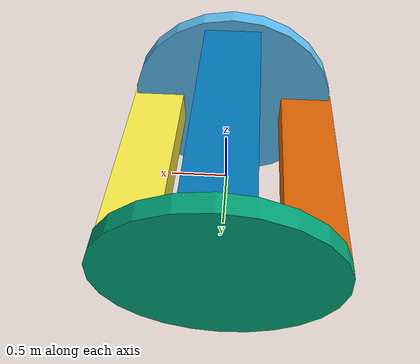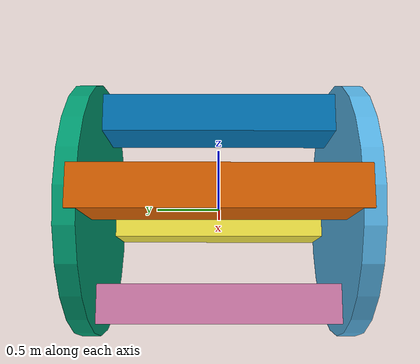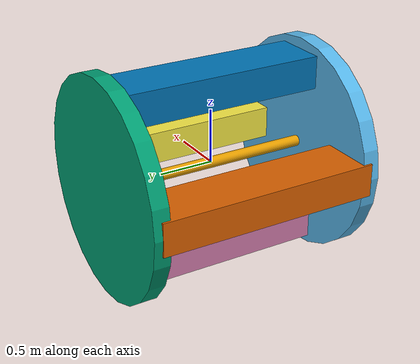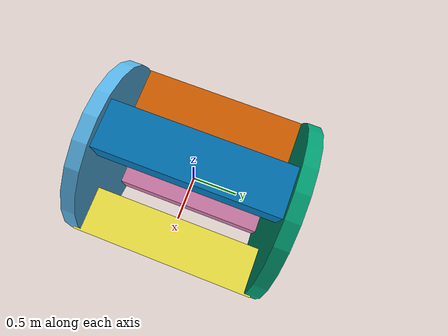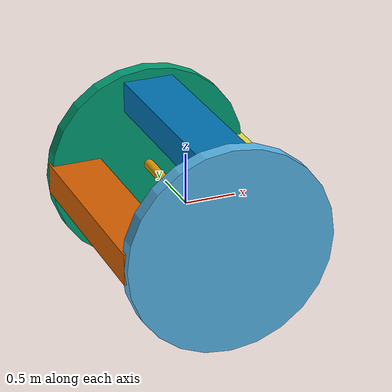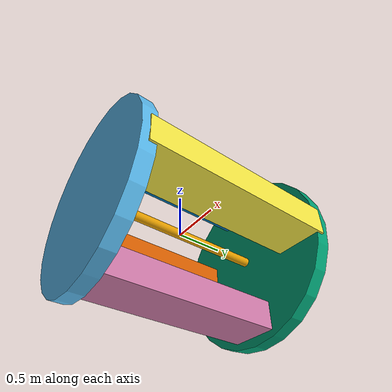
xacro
<?xml version="1.0" ?>

<robot name="slambot"
    xmlns:xacro="https://www.ros.org/wiki/xacro">

    <xacro:include filename="$(find growbot_sim)/urdf/components/box_link.xacro" />

    <xacro:property name="carousel_wheel_mass" value="2" />
    <xacro:property name="carousel_wheel_radius" value="1" />
    <xacro:property name="carousel_wheel_width" value="0.15" />
    <xacro:property name="carousel_width" value="2" />
    <xacro:property name="carousel_box_height" value="0.3" />
    <xacro:property name="carousel_box_length" value="0.5" />
    <xacro:property name="carousel_box_weight" value="5" />
    <xacro:property name="carousel_center_radius" value="0.05" />
    <xacro:property name="carousel_center_weight" value="2" />

    <link name="carousel_center_link">
        <visual>
            <origin xyz="0 0 0" rpy="${-pi/2} 0 0" />
            <geometry>
                <cylinder length="${carousel_width}" radius="${carousel_center_radius}" />
            </geometry>
        </visual>
        <collision>
            <origin xyz="0 0 0" rpy="${-pi/2} 0 0" />
            <geometry>
                <cylinder length="${carousel_width}" radius="${carousel_center_radius}" />
            </geometry>
            <material name="red"/>
        </collision>
        <inertial>
            <mass value="${carousel_center_weight}" />
            <origin xyz="0 0 0" rpy="${pi/2} 0 0" />
            <cylinder_inertia m="${carousel_center_weight}" r="${carousel_center_radius}" h="${carousel_wheel_width}" />
        </inertial>
    </link>

    <joint name="carousel_left_wheel_join" type="fixed">
		<origin xyz="0 ${carousel_width/2} 0" />
		<parent link="carousel_center_link"/>
		<child link="carousel_wheel_left_link" />
		<axis xyz="0 1 0"/>
	</joint>

	<joint name="carousel_right_wheel_join" type="fixed">
		<origin xyz="0 ${-carousel_width/2} 0" />
		<parent link="carousel_center_link"/>
		<child link="carousel_wheel_right_link" />
		<axis xyz="0 1 0"/>
	</joint>

    <link name="carousel_wheel_right_link">
        <inertial>
            <mass value="${carousel_wheel_mass}" />
            <origin xyz="0 0 0" rpy="${pi/2} 0 0" />
            <cylinder_inertia m="${carousel_wheel_mass}" r="${carousel_wheel_radius}" h="${carousel_wheel_width}" />
        </inertial>
        <visual>
            <origin xyz="0 0 0" rpy="${pi/2} 0 0" />
            <geometry>
                <cylinder length="${carousel_wheel_width}" radius="${carousel_wheel_radius}" />
            </geometry>
        </visual>
        <collision>
            <origin xyz="0 0 0" rpy="${pi/2} 0 0" />
            <geometry>
                <cylinder length="${carousel_wheel_width}" radius="${carousel_wheel_radius}" />
            </geometry>
            <material name="red"/>
        </collision>
    </link>

    <link name="carousel_wheel_left_link">
        <visual>
            <origin xyz="0 0 0" rpy="${-pi/2} 0 0" />
            <geometry>
                <cylinder length="${carousel_wheel_width}" radius="${carousel_wheel_radius}" />
            </geometry>
        </visual>
        <collision>
            <origin xyz="0 0 0" rpy="${-pi/2} 0 0" />
            <geometry>
                <cylinder length="${carousel_wheel_width}" radius="${carousel_wheel_radius}" />
            </geometry>
            <material name="red"/>
        </collision>
        <inertial>
            <mass value="${carousel_wheel_mass}" />
            <origin xyz="0 0 0" rpy="${pi/2} 0 0" />
            <cylinder_inertia m="${carousel_wheel_mass}" r="${carousel_wheel_radius}" h="${carousel_wheel_width}" />
        </inertial>
    </link>

    <joint name="carousel_box_0_link_join" type="continuous">
        <origin xyz="${carousel_wheel_radius/2+carousel_box_length/2} ${carousel_width/2} 0" />
        <parent link="carousel_wheel_right_link"/>
        <child link="carousel_box_0_link" />
        <axis xyz="0 1 0"/>
    </joint>

    <joint name="carousel_box_1_link_join" type="continuous">
        <origin xyz="0 ${carousel_width/2} ${carousel_wheel_radius/2+carousel_box_length/2}" />
        <parent link="carousel_wheel_right_link"/>
        <child link="carousel_box_1_link" />
        <axis xyz="0 1 0"/>
    </joint>

    <joint name="carousel_box_2_link_join" type="continuous">
        <origin xyz="${-carousel_wheel_radius/2-carousel_box_length/2} ${carousel_width/2} 0" />
        <parent link="carousel_wheel_right_link"/>
        <child link="carousel_box_2_link" />
        <axis xyz="0 1 0"/>
    </joint>

    <joint name="carousel_box_3_link_join" type="continuous">
        <origin xyz="0 ${carousel_width/2} ${-carousel_wheel_radius/2-carousel_box_length/2}" />
        <parent link="carousel_wheel_right_link"/>
        <child link="carousel_box_3_link" />
        <axis xyz="0 1 0"/>
    </joint>

    <box_link name="carousel_box_0_link" m="${carousel_box_weight}" x="${carousel_box_length}" y="${carousel_width}" z="${carousel_box_height}" />

    <box_link name="carousel_box_1_link" m="${carousel_box_weight}" x="${carousel_box_length}" y="${carousel_width}" z="${carousel_box_height}" />

    <box_link name="carousel_box_2_link" m="${carousel_box_weight}" x="${carousel_box_length}" y="${carousel_width}" z="${carousel_box_height}" />

    <box_link name="carousel_box_3_link" m="${carousel_box_weight}" x="${carousel_box_length}" y="${carousel_width}" z="${carousel_box_height}" />

</robot>

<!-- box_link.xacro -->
<robot name="growbot"
    xmlns:xacro="https://www.ros.org/wiki/xacro">

    <xacro:macro name="box_link" params="name x y z m">
        <link name="${name}">
            <visual>
                <origin xyz="0 0 0" rpy="0 0 0" />
                <geometry>
                    <box size="${x} ${y} ${z}" />
                </geometry>
            </visual>
            <collision>
                <origin xyz="0 0 0" rpy="0 0 0" />
                <geometry>
                    <box size="${x} ${y} ${z}" />
                </geometry>
            </collision>
            <inertial>
                <mass value="${m}" />
                <origin xyz="0 0 0" rpy="0 0 0" />
                <box_inertia m="${m}" x="${x}" y="${y}" z="${z}" />
            </inertial>
        </link>
    </xacro:macro>
</robot>
